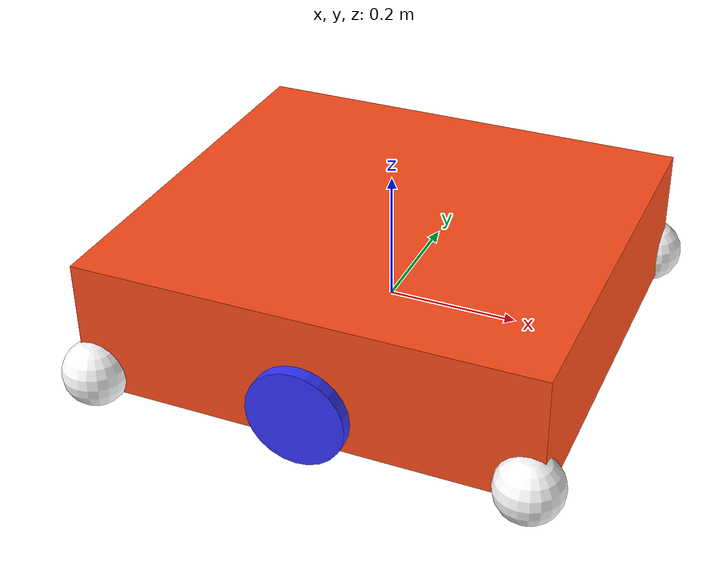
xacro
<?xml version="1.0"?>
<robot xmlns:xacro="http://www.ros.org/wiki/xacro" >

    <xacro:include filename="inertial_macros.xacro"/>

    <xacro:property name="chassis_length" value="0.7"/>
    <xacro:property name="chassis_width" value="0.65"/>
    <xacro:property name="chassis_height" value="0.2"/>
    <xacro:property name="chassis_mass" value="1.0"/>

    <xacro:property name="wheel_radius" value="0.075"/>
    <xacro:property name="wheel_thickness" value="0.04"/>
    <xacro:property name="wheel_mass" value="0.05"/>
    <xacro:property name="wheel_offset_x" value="0.35"/>
    <xacro:property name="wheel_offset_y" value="0.325"/>
    <xacro:property name="wheel_offset_z" value="0.05"/>

    <xacro:property name="caster_wheel_radius" value="0.05"/>
    <xacro:property name="caster_wheel_mass" value="0.01"/>
    <xacro:property name="right_back_wheel_offset_x" value="0.02"/>
    <xacro:property name="left_back_wheel_offset_x" value="0.02"/>
    <xacro:property name="right_fwd_wheel_offset_x" value="0.68"/>
    <xacro:property name="left_fwd_wheel_offset_x" value="0.68"/>
    <xacro:property name="right_back_wheel_offset_y" value="0.325"/>
    <xacro:property name="left_back_wheel_offset_y" value="-0.325"/>
    <xacro:property name="right_fwd_wheel_offset_y" value="0.325"/>
    <xacro:property name="left_fwd_wheel_offset_y" value="-0.325"/>
    <xacro:property name="caster_wheel_offset_z" value="${wheel_offset_z - wheel_radius + caster_wheel_radius}"/>

    <material name="white">
        <color rgba="1 1 1 1" />
    </material>

    <material name="orange">
        <color rgba="1 0.3 0.1 1"/>
    </material>

    <material name="blue">
        <color rgba="0.2 0.2 1 1"/>
    </material>

    <material name="black">
        <color rgba="0 0 0 1"/>
    </material>

    <material name="red">
        <color rgba="1 0 0 1"/>
    </material>

    <!-- BASE LINK -->

    <link name="base_link">

    </link>

    <!-- BASE_FOOTPRINT LINK AND JOINT-->

    <joint name="base_footprint_joint" type="fixed">
        <parent link="base_link"/>
        <child link="base_footprint"/>
        <origin xyz="0 0 0" rpy="0 0 0"/>
    </joint>

    <link name="base_footprint">
    </link>

    <!-- CHASSIS LINK -->

    <joint name="chassis_joint" type="fixed">
        <parent link="base_link"/>
        <child link="chassis_link"/>
        <origin xyz="${-wheel_offset_x} 0 ${-wheel_offset_z}"/>
    </joint>

    <link name="chassis_link">
        <visual>
            <origin xyz="${chassis_length/2} 0 ${chassis_height/2}"/>
            <geometry>
                <box size="${chassis_length} ${chassis_width} ${chassis_height}"/>
            </geometry>
            <material name="orange"/>
        </visual>
        <collision>
            <origin xyz="${chassis_length/2} 0 ${chassis_height/2}"/>
            <geometry>
                <box size="${chassis_length} ${chassis_width} ${chassis_height}"/>
            </geometry>
        </collision>
        <xacro:inertial_box mass="0.5" x="${chassis_length}" y="${chassis_width}" z="${chassis_height}">
            <origin xyz="${chassis_length/2} 0 ${chassis_height/2}" rpy="0 0 0"/>
        </xacro:inertial_box>
    </link>

    <gazebo reference="chassis_link">
        <material>Gazebo/Orange</material>
    </gazebo>

    <!-- LEFT WHEEL LINK -->

    <joint name="left_wheel_joint" type="continuous">
        <parent link="base_link"/>
        <child link="left_wheel"/>
        <origin xyz="0 ${wheel_offset_y} 0" rpy="-${pi/2} 0 0" /> <!-- rotating the axes of cylinder from default mode to make axis of rotation normal to the chassis-->
        <axis xyz="0 0 1"/> <!-- determining the axis of rotation to the wheel about z axis -->
    </joint>

    <link name="left_wheel">
        <visual>
            <geometry>
                <cylinder radius="${wheel_radius}" length="${wheel_thickness}"/>
            </geometry>
            <material name="blue"/>
        </visual>
        <collision>
            <geometry>
                <sphere radius="${wheel_radius}"/>
            </geometry>
        </collision>
        <xacro:inertial_cylinder mass="${wheel_mass}" length="${wheel_thickness}" radius="${wheel_radius}">
            <origin xyz="0 0 0" rpy="0 0 0"/>
        </xacro:inertial_cylinder>
    </link>

    <gazebo reference="left_wheel">
        <material>Gazebo/Blue</material>
    </gazebo>

    <!-- RIGHT WHEEL LINK -->

    <joint name="right_wheel_joint" type="continuous">
        <parent link="base_link"/>
        <child link="right_wheel"/>
        <origin xyz="0 ${-wheel_offset_y} 0" rpy="${pi/2} 0 0" />
        <axis xyz="0 0 -1"/>
    </joint>

    <link name="right_wheel">
        <visual>
            <geometry>
                <cylinder radius="${wheel_radius}" length="${wheel_thickness}"/>
            </geometry>
            <material name="blue"/>
        </visual>
        <collision>
            <geometry>
                <sphere radius="${wheel_radius}"/>
            </geometry>
        </collision>
        <xacro:inertial_cylinder mass="${wheel_mass}" length="${wheel_thickness}" radius="${wheel_radius}">
            <origin xyz="0 0 0" rpy="0 0 0"/>
        </xacro:inertial_cylinder>
    </link>

    <gazebo reference="right_wheel">
        <material>Gazebo/Blue</material>
    </gazebo>

    <!-- RIGHT_BACK WHEEL LINK -->

    <joint name="right_back_wheel_joint" type="fixed">
        <parent link="chassis_link"/>
        <child link="right_back_wheel"/>
        <origin xyz="${right_back_wheel_offset_x} ${right_back_wheel_offset_y} ${caster_wheel_offset_z}"/>
    </joint>

    <link name="right_back_wheel">
        <visual>
            <geometry>
                <sphere radius="${caster_wheel_radius}"/>
            </geometry>
            <material name="white"/>
        </visual>
        <collision>
            <geometry>
                <sphere radius="${caster_wheel_radius}"/>
            </geometry>
        </collision>
        <xacro:inertial_sphere mass="${caster_wheel_mass}" radius="${caster_wheel_radius}">
            <origin xyz="0 0 0" rpy="0 0 0"/>
        </xacro:inertial_sphere>
    </link>

        <!-- LEFT_BACK WHEEL LINK -->

        <joint name="left_back_wheel_joint" type="fixed">
            <parent link="chassis_link"/>
            <child link="left_back_wheel"/>
            <origin xyz="${left_back_wheel_offset_x} ${left_back_wheel_offset_y} ${caster_wheel_offset_z}"/>
        </joint>

        <link name="left_back_wheel">
            <visual>
                <geometry>
                    <sphere radius="${caster_wheel_radius}"/>
                </geometry>
                <material name="white"/>
            </visual>
            <collision>
                <geometry>
                    <sphere radius="${caster_wheel_radius}"/>
                </geometry>
            </collision>
            <xacro:inertial_sphere mass="${caster_wheel_mass}" radius="${caster_wheel_radius}">
                <origin xyz="0 0 0" rpy="0 0 0"/>
            </xacro:inertial_sphere>
        </link>

        <!-- RIGHT_FWD WHEEL LINK -->

        <joint name="right_fwd_wheel_joint" type="fixed">
            <parent link="chassis_link"/>
            <child link="right_fwd_wheel"/>
            <origin xyz="${right_fwd_wheel_offset_x} ${right_fwd_wheel_offset_y} ${caster_wheel_offset_z}"/>
        </joint>

        <link name="right_fwd_wheel">
            <visual>
                <geometry>
                    <sphere radius="${caster_wheel_radius}"/>
                </geometry>
                <material name="white"/>
            </visual>
            <collision>
                <geometry>
                    <sphere radius="${caster_wheel_radius}"/>
                </geometry>
            </collision>
            <xacro:inertial_sphere mass="${caster_wheel_mass}" radius="${caster_wheel_radius}">
            <origin xyz="0 0 0" rpy="0 0 0"/>
            </xacro:inertial_sphere>
        </link>

        <!-- LEFT_FWD WHEEL LINK -->

        <joint name="left_fwd_wheel_joint" type="fixed">
            <parent link="chassis_link"/>
            <child link="left_fwd_wheel"/>
            <origin xyz="${left_fwd_wheel_offset_x} ${left_fwd_wheel_offset_y} ${caster_wheel_offset_z}"/>
        </joint>

        <link name="left_fwd_wheel">
            <visual>
                <geometry>
                    <sphere radius="${caster_wheel_radius}"/>
                </geometry>
                <material name="white"/>
            </visual>
            <collision>
                <geometry>
                    <sphere radius="${caster_wheel_radius}"/>
                </geometry>
            </collision>
            <xacro:inertial_sphere mass="${caster_wheel_mass}" radius="${caster_wheel_radius}">
                <origin xyz="0 0 0" rpy="0 0 0"/>
            </xacro:inertial_sphere>
        </link>

    <gazebo reference="right_back_wheel">
        <material>Gazebo/White</material>
        <mu1 value="0.001"/>
        <mu2 value="0.001"/>
    </gazebo>

    <gazebo reference="left_back_wheel">
        <material>Gazebo/White</material>
        <mu1 value="0.001"/>
        <mu2 value="0.001"/>
    </gazebo>

    <gazebo reference="right_fwd_wheel">
        <material>Gazebo/White</material>
        <mu1 value="0.001"/>
        <mu2 value="0.001"/>
    </gazebo>

    <gazebo reference="left_fwd_wheel">
        <material>Gazebo/White</material>
        <mu1 value="0.001"/>
        <mu2 value="0.001"/>
    </gazebo>

</robot>

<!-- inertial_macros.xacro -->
<robot name="diff_bot"
       xmlns:xacro="http://ros.org/wiki/xacro">
       <xacro:macro name="inertial_box" params="mass x y z *origin">
        <inertial>
            <xacro:insert_block name="origin"/>
            <mass value="${mass}"/>
            <inertia ixx="${(1/12) * mass *(y*y+z*z)}" ixy="0.0" ixz="0.0"
                     iyy="${(1/12) * mass *(x*x+y*y)}" iyz="0.0"
                     izz="${(1/12) * mass *(x*x+y*y)}"/>

            </inertial>
    </xacro:macro>

  <xacro:macro name="inertial_sphere" params="mass radius *origin">
    <inertial>
      <xacro:insert_block name="origin"/>
      <mass value="${mass}" />
      <inertia ixx="${(2/5) * mass * (radius*radius) }" ixy="0.0" ixz="0.0"
               iyy="${(2/5) * mass * (radius*radius) }" iyz="0.0"
               izz="${(2/5) * mass * (radius*radius) }" />
    </inertial>
  </xacro:macro>

  <xacro:macro name="inertial_cylinder" params="mass length radius *origin">
    <inertial>
      <xacro:insert_block name="origin"/>
      <mass value="${mass}" />
      <inertia ixx="${(1/12) * mass * (3*radius*radius + length*length)}" ixy="0.0" ixz="0.0"
               iyy="${(1/12) * mass * (3*radius*radius + length*length)}" iyz="0.0"
               izz="${(1/2) * mass * (radius*radius)}" />
    </inertial>
  </xacro:macro>

</robot>
